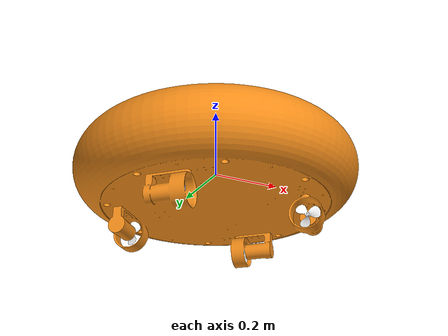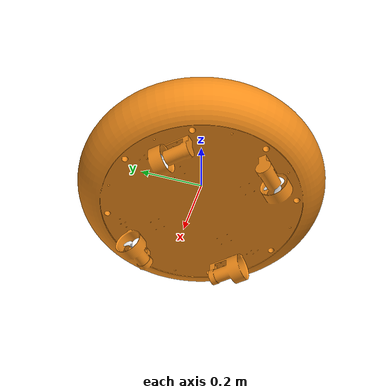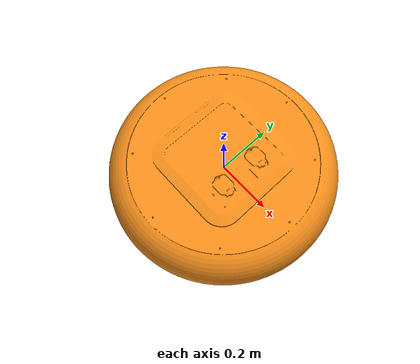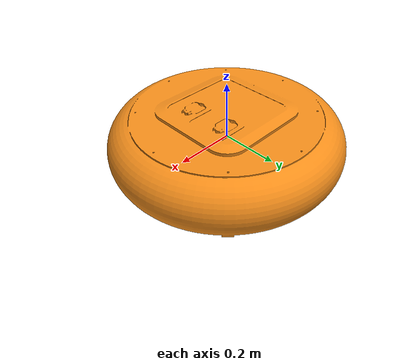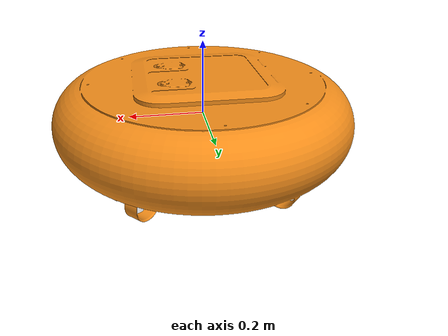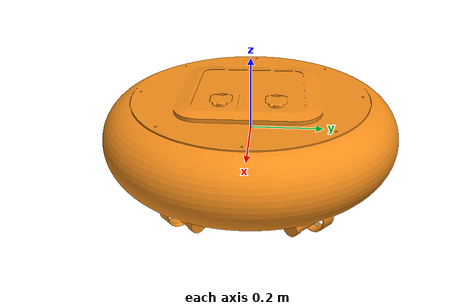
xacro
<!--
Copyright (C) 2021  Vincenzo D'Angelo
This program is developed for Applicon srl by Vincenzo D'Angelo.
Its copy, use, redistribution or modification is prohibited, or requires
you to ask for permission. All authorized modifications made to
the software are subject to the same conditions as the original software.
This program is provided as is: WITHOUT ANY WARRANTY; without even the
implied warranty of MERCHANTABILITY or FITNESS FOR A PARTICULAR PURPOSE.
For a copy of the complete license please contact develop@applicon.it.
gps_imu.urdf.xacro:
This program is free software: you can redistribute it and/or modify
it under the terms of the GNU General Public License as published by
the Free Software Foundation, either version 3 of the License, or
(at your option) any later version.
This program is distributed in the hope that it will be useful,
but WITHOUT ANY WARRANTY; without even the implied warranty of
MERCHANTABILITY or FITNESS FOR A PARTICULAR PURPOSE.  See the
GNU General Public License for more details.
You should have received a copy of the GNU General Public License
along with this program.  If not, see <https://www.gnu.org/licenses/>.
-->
<?xml version="1.0" ?>

<robot name="asv" xmlns:xacro="http://www.ros.org/wiki/xacro">

    <!-- Include -->
    <xacro:include filename="$(find asv)/urdf/asv.gazebo"/>
    <xacro:include filename="$(find asv)/urdf/thruster.urdf.xacro"/>
    <xacro:include filename="$(find asv)/urdf/gps_imu.urdf.xacro"/>

    <!-- Robot's dimension parameters-->
    <xacro:property name="d" value="0.51"/> <!-- Distance between center and thruster's rotor axis -->
    <xacro:property name="h" value="0.05"/> <!-- Height between center and thruster's rotor axis -->
    <xacro:property name="alpha" value="${pi/4}"/> <!-- Thruster allocation angle (respect the vehicle ENU x-axis) -->
    <xacro:property name="hc" value="0.04"/> <!-- Height between inside center and bottom -->
    <xacro:property name="H" value="0.2"/> <!-- Height of the vehicle -->

    <!-- The base link - the reference link for the entire model -->
    <link name="base_link">
        <visual>
            <origin rpy="0 0 0" xyz="0 0 ${-H/4}" />
            <geometry>
                <box size="0.01 0.01 0.01"/>
            </geometry>
            <material name="red" />
        </visual>
    </link>

    <gazebo reference="base_link">
        <material>Gazebo/Red</material>
    </gazebo>

    <!-- The vehicle hull link -->
    <link name="hull_link">
        <visual>
            <origin rpy="0 0 0" xyz="0 0 ${-H/4}" />
            <geometry>
                <mesh filename="package://asv/meshes/body.stl" scale="1 1 1"/>
                <!--mesh filename="package://asv/meshes/body.stl" scale="0.001 0.001 0.001"/-->
                <!--box size="0.5 0.5 0.5"/-->
                <!--cylinder radius="0.4" length="0.2"/-->
            </geometry>
            <material name="orange" />
        </visual>
        <collision>
            <origin rpy="0 0 0" xyz="0 0 ${-H/4}" />
            <geometry>
                <!--mesh filename="package://asv/meshes/body2.stl" scale="1 1 1"/-->
                <cylinder radius="0.4" length="0.2"/>
                <!--box size="0.5 0.5 0.5"/-->
                <!--mesh filename="package://asv/meshes/body_collision.stl"  scale="0.001 0.001 0.001"/-->
            </geometry>
        </collision>
        <inertial>
            <origin xyz="0.000 0.000 0.000"/>
            <mass value="20.9057"/>
            <inertia ixx="0.7732" ixy="0.0096" ixz="2.9732e-04"
                                  iyy="0.7730" iyz="-0.0085"
                                               izz="1.2544"/>
        </inertial>
    </link>

    <gazebo reference="hull_link">
        <material>Gazebo/Orange</material>
        <provideFeedback>true</provideFeedback>
    </gazebo>

    <joint name="hull_joint" type="fixed">
        <origin rpy="0 0 0" xyz="0 0 ${-H/4}"/>
        <parent link="base_link" />
        <child link="hull_link" />
    </joint>

    <!-- Thruster -->
    <xacro:thruster_macro thruster_id="1">
        <origin xyz="${d/2*cos(alpha)} ${d/2*sin(alpha)} ${-H/4-h}" rpy="0 ${pi/2} ${-pi/4}" />
    </xacro:thruster_macro>

    <xacro:thruster_macro thruster_id="2">
        <origin xyz="${d/2*cos(alpha)} ${-d/2*sin(alpha)} ${-H/4-h}" rpy="0 ${pi/2} ${pi/4}" />
    </xacro:thruster_macro>

    <xacro:thruster_macro thruster_id="3">
        <origin xyz="${-d/2*cos(alpha)} ${-d/2*sin(alpha)} ${-H/4-h}" rpy="0 ${pi/2} ${3*pi/4}" />
    </xacro:thruster_macro>

    <xacro:thruster_macro thruster_id="4">
        <origin xyz="${-d/2*cos(alpha)} ${d/2*sin(alpha)} ${-H/4-h}" rpy="0 ${pi/2} ${-3*pi/4}" />
    </xacro:thruster_macro>

    <!-- GPS -->
    <xacro:gps_macro>
        <origin xyz="0 0 ${3/4*H}" rpy="0 0 0"/>
    </xacro:gps_macro>

    <!-- IMU -->
    <xacro:imu_macro>
        <origin xyz="0 0 ${2*H/4}" rpy="0 0 0"/>
    </xacro:imu_macro>

</robot>

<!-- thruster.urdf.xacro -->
<!-- Xacro macros for thrusters.
    Define xacro macros for thruster models:
 -->

<robot xmlns:xacro="http://www.ros.org/wiki/xacro">

    <!-- Thrusters' propeller 3D model -->
    <xacro:property name="prop_mesh_file" value="package://asv/meshes/propeller.stl"/>

    <!-- Thruster macro with integration of joint and link-->
    <xacro:macro name="thruster_macro" params="thruster_id *origin">

        <link name="t${thruster_id}_frame">
            <visual>
                <origin xyz="0 0 0" rpy="0 0 0"/>
                <geometry>
                    <mesh filename="${prop_mesh_file}" scale="1 1 1"/>
                </geometry>
                <material name="white_rviz">
                    <color rgba="1 1 1 1"/>
                </material>
            </visual>
            <inertial>
                <origin xyz="0 0 0" />
                <mass value="0.65779" />
                <inertia ixx="3.1422e-05" ixy="0" ixz="0"
                         iyy="3.1412e-05" iyz="0"
                         izz="5.2627e-05" />
            </inertial>
            <collision>
            <origin rpy="0 0 0" xyz="0 0 0" />
            <geometry>
                <box size="0.01 0.01 0.01"/>
            </geometry>
        </collision>
        </link>

        <joint name="t${thruster_id}_joint" type="continuous">
            <xacro:insert_block name="origin"/>
            <parent link="hull_link"/>
            <child link="t${thruster_id}_frame" />
            <axis xyz="0 0 1"/>
        </joint>

        <gazebo>
            <plugin name="t${thruster_id}_thruster_model" filename="libuuv_thruster_ros_plugin.so">
            <!-- Name of the thruster link -->
            <linkName>t${thruster_id}_frame</linkName>

            <!-- Name of the joint between thruster and vehicle base link -->
            <jointName>t${thruster_id}_joint</jointName>

            <!-- Make the thruster aware of its id -->
            <thrusterID>${thruster_id}</thrusterID>

            <!-- Gain of the input command signal -->
            <gain>1</gain>

            <!-- Minimum and maximum thrust force output allowed -->
            <!-- 9.2 Kgf -> 90 N -->
            <thrustMin>-90</thrustMin>
            <thrustMax>90</thrustMax>

            <!--
            Input limit value for the input signal for thruster unit
            7200 RPM -> 750 rad/s maybe pwm [0;100] is better
            -->
            <clampMin>-750</clampMin>
            <clampMax>750</clampMax>

            <!--
            Value from 0 to 1 to set the efficiency of the output thrust force
            Default value is 1.0
            -->
            <thrust_efficiency>1</thrust_efficiency>

            <propeller_efficiency>1</propeller_efficiency>

            <dynamics>
                <type>ZeroOrder</type>
            </dynamics>

            <conversion>
                <type>Basic</type>
                <rotorConstant>0.00016</rotorConstant>
            </conversion>

            </plugin>
        </gazebo>

    <gazebo reference="t${thruster_id}_frame">
        <provideFeedback>true</provideFeedback>
    </gazebo>

    <gazebo>
        <plugin name="ft_sensor" filename="libgazebo_ros_ft_sensor.so">
        <updateRate>1000.0</updateRate>
        <topicName>ft_sensor_topic</topicName>
        <jointName>t${thruster_id}_joint</jointName>
        <noise>
          <type>gaussian</type>
          <mean>0.0</mean>
          <stddev>0.003</stddev>
        </noise>
        </plugin>
    </gazebo>

  </xacro:macro>

</robot>

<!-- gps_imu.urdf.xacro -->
<!--  Xacro macros for vehicle sensors.
    Define xacro macros for GPS and IMU sensrs:
 -->

<robot xmlns:xacro="http://www.ros.org/wiki/xacro">

    <!-- GPS macro with integration of joint and link-->
    <xacro:macro name="gps_macro" params="*origin">

        <link name="gps_frame">
            <visual>
                <origin xyz="0 0 0" rpy="0 0 0"/>
                <geometry>
                    <box size="0.1 0.07 0.02"/>
                </geometry>
                <material name="white_rviz">
                    <color rgba="1 1 1 1"/>
                </material>
            </visual>
            <inertial>
                <origin xyz="0 0 0" />
                <mass value="0.65779" />
                <inertia ixx="3.1422e-05" ixy="0" ixz="0"
                         iyy="3.1412e-05" iyz="0"
                         izz="5.2627e-05" />
            </inertial>
        </link>

        <joint name="gps_joint" type="fixed">
            <xacro:insert_block name="origin"/>
            <parent link="hull_link"/>
            <child link="gps_frame" />
            <axis xyz="0 0 0"/>
        </joint>

        <gazebo>
            <plugin name="gps_model" filename="libhector_gazebo_ros_gps.so">
                <!-- Name of the GPS link -->
                <bodyName>gps_frame</bodyName>
                <topicName>fix</topicName>
                <velocityTopicName>fix_velocity</velocityTopicName>
                <referenceLatitude>39.055306</referenceLatitude>
                <referenceLongitude>16.091825</referenceLongitude>
                <referenceAltitude>0.1</referenceAltitude>
                <drift>0 0 0</drift>
                <gaussianNoise>0 0 0</gaussianNoise>
                <velocityDrift>0 0 0</velocityDrift>
                <velocityGaussianNoise>0 0 0</velocityGaussianNoise>
                <alwaysOn>1</alwaysOn>
                <updateRate>50.0</updateRate>
            </plugin>
        </gazebo>

  </xacro:macro>

  <!-- IMU macro with integration of joint and link-->
    <xacro:macro name="imu_macro" params="*origin">

        <link name="imu_frame">
            <visual>
                <origin xyz="0 0 0" rpy="0 0 0"/>
                <geometry>
                    <box size="0.05 0.05 0.03"/>
                </geometry>
                <material name="white_rviz">
                    <color rgba="1 1 1 1"/>
                </material>
            </visual>
            <inertial>
                <origin xyz="0 0 0" />
                <mass value="0.65779" />
                <inertia ixx="3.1422e-05" ixy="0" ixz="0"
                         iyy="3.1412e-05" iyz="0"
                         izz="5.2627e-05" />
            </inertial>
        </link>

        <joint name="imu_joint" type="fixed">
            <xacro:insert_block name="origin"/>
            <parent link="hull_link"/>
            <child link="imu_frame" />
            <axis xyz="0 0 0"/>
        </joint>

        <gazebo reference="imu_frame">
            <gravity>true</gravity>
            <sensor name="imu_sensor" type="imu">
            <always_on>true</always_on>
            <update_rate>100</update_rate>
            <visualize>true</visualize>
            <topic>__default_topic__</topic>
            <plugin filename="libgazebo_ros_imu_sensor.so" name="imu_plugin">
                <topicName>imu</topicName>
                <bodyName>imu_frame</bodyName>
                <updateRateHZ>10.0</updateRateHZ>
                <gaussianNoise>0.0</gaussianNoise>
                <xyzOffset>0 0 0</xyzOffset>
                <rpyOffset>0 0 0</rpyOffset>
                <frameName>imu_frame</frameName>
                <initialOrientationAsReference>false</initialOrientationAsReference>
            </plugin>
            <pose>0 0 0 0 0 0</pose>
            </sensor>
        </gazebo>

  </xacro:macro>

</robot>
